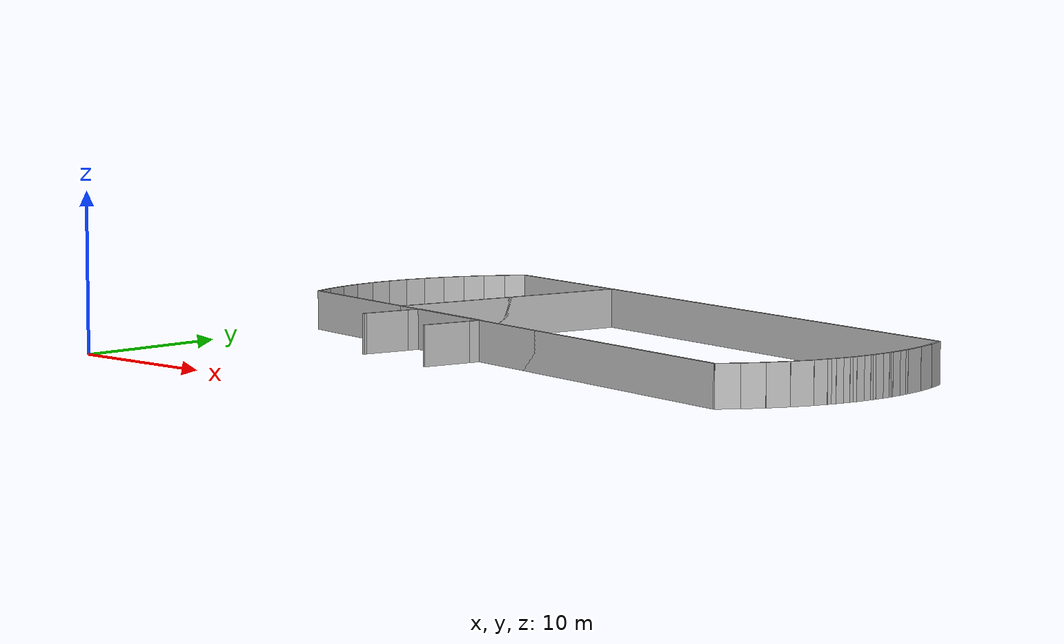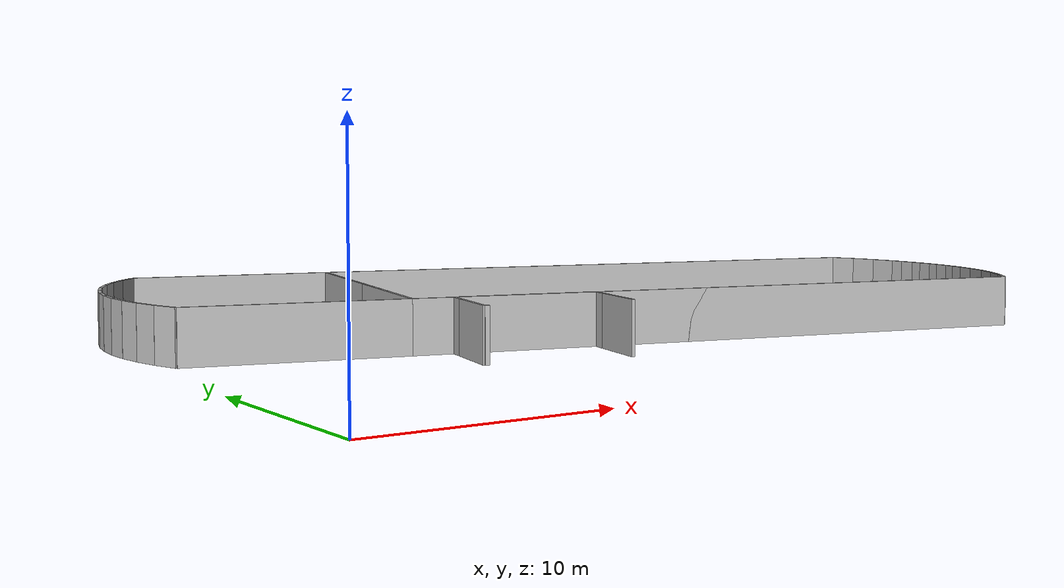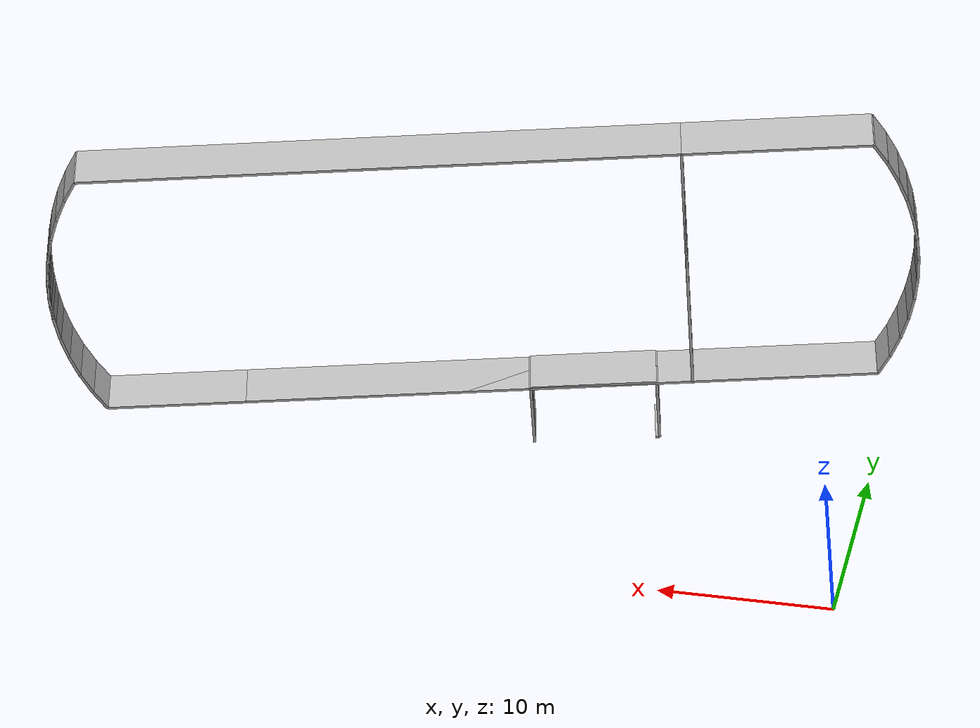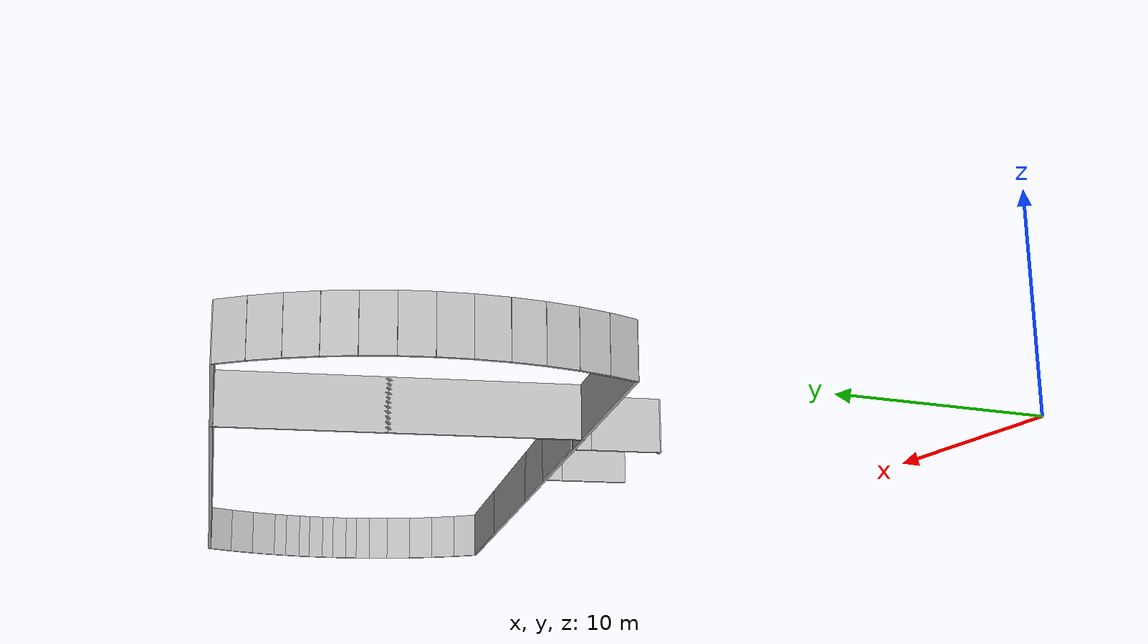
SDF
<?xml version="1.0" ?>
<sdf version="1.6">
  <model name="sps_1003">
    <pose frame="">0 0 0 0 -0 0</pose>
    <static>1</static>
    <self_collide>0</self_collide>
    <allow_auto_disable>0</allow_auto_disable>
    <link name="Wall126">
      <kinematic>0</kinematic>
      <gravity>1</gravity>
      <self_collide>0</self_collide>
      <collision name="collision">
        <geometry>
          <box>
            <size>3.17012 0.15 2.5</size>
          </box>
        </geometry>
        <pose frame="">0 0 0 0 -0 0</pose>
      </collision>
      <visual name="visual">
        <geometry>
          <box>
            <size>3.17012 0.15 2.5</size>
          </box>
        </geometry>
        <pose frame="">0 0 0 0 -0 0</pose>
        <cast_shadows>1</cast_shadows>
        <transparency>0.0</transparency>
      </visual>
      <pose frame="">18.9127 11.7757 1.25 0 -0 1.35649</pose>
    </link>
    <link name="Wall293">
      <kinematic>0</kinematic>
      <gravity>1</gravity>
      <self_collide>0</self_collide>
      <collision name="collision">
        <geometry>
          <box>
            <size>24.1434 0.15 2.5</size>
          </box>
        </geometry>
        <pose frame="">0 0 0 0 -0 0</pose>
      </collision>
      <visual name="visual">
        <geometry>
          <box>
            <size>24.1434 0.15 2.5</size>
          </box>
        </geometry>
        <pose frame="">0 0 0 0 -0 0</pose>
        <cast_shadows>1</cast_shadows>
        <transparency>0.0</transparency>
      </visual>
      <pose frame="">22.6738 13.3982 1.25 0 0 -0.214259</pose>
    </link>
    <link name="Wall294">
      <kinematic>0</kinematic>
      <gravity>1</gravity>
      <self_collide>0</self_collide>
      <collision name="collision">
        <geometry>
          <box>
            <size>7.51935 0.15 2.5</size>
          </box>
        </geometry>
        <pose frame="">0 0 0 0 -0 0</pose>
      </collision>
      <visual name="visual">
        <geometry>
          <box>
            <size>7.51935 0.15 2.5</size>
          </box>
        </geometry>
        <pose frame="">0 0 0 0 -0 0</pose>
        <cast_shadows>1</cast_shadows>
        <transparency>0.0</transparency>
      </visual>
      <pose frame="">38.1431 10.0321 1.25 0 0 -0.214259</pose>
    </link>
    <link name="Wall614">
      <kinematic>0</kinematic>
      <gravity>1</gravity>
      <self_collide>0</self_collide>
      <collision name="collision">
        <geometry>
          <box>
            <size>3.1699 0.15 2.5</size>
          </box>
        </geometry>
        <pose frame="">0 0 0 0 -0 0</pose>
      </collision>
      <visual name="visual">
        <geometry>
          <box>
            <size>3.1699 0.15 2.5</size>
          </box>
        </geometry>
        <pose frame="">0 0 0 0 -0 0</pose>
        <cast_shadows>1</cast_shadows>
        <transparency>0.0</transparency>
      </visual>
      <pose frame="">12.2673 13.2216 1.25 0 -0 1.35653</pose>
    </link>
    <link name="Wall769">
      <kinematic>0</kinematic>
      <gravity>1</gravity>
      <self_collide>0</self_collide>
      <collision name="collision">
        <geometry>
          <box>
            <size>16.1602 0.15 2.5</size>
          </box>
        </geometry>
        <pose frame="">0 0 0 0 -0 0</pose>
      </collision>
      <visual name="visual">
        <geometry>
          <box>
            <size>16.1602 0.15 2.5</size>
          </box>
        </geometry>
        <pose frame="">0 0 0 0 -0 0</pose>
        <cast_shadows>1</cast_shadows>
        <transparency>0.0</transparency>
      </visual>
      <pose frame="">12.5963 23.8602 1.25 0 -0 1.35651</pose>
    </link>
    <link name="Wall770">
      <kinematic>0</kinematic>
      <gravity>1</gravity>
      <self_collide>0</self_collide>
      <collision name="collision">
        <geometry>
          <box>
            <size>31.6619 0.15 2.5</size>
          </box>
        </geometry>
        <pose frame="">0 0 0 0 -0 0</pose>
      </collision>
      <visual name="visual">
        <geometry>
          <box>
            <size>31.6619 0.15 2.5</size>
          </box>
        </geometry>
        <pose frame="">0 0 0 0 -0 0</pose>
        <cast_shadows>1</cast_shadows>
        <transparency>0.0</transparency>
      </visual>
      <pose frame="">29.7835 28.3895 1.25 0 0 -0.214257</pose>
    </link>
    <link name="Wall771">
      <kinematic>0</kinematic>
      <gravity>1</gravity>
      <self_collide>0</self_collide>
      <collision name="collision">
        <geometry>
          <box>
            <size>1.41538 0.15 2.5</size>
          </box>
        </geometry>
        <pose frame="">0 0 0 0 -0 0</pose>
      </collision>
      <visual name="visual">
        <geometry>
          <box>
            <size>1.41538 0.15 2.5</size>
          </box>
        </geometry>
        <pose frame="">0 0 0 0 -0 0</pose>
        <cast_shadows>1</cast_shadows>
        <transparency>0.0</transparency>
      </visual>
      <pose frame="">45.4519 24.3445 1.25 0 0 -1.28516</pose>
    </link>
    <link name="Wall772">
      <kinematic>0</kinematic>
      <gravity>1</gravity>
      <self_collide>0</self_collide>
      <collision name="collision">
        <geometry>
          <box>
            <size>1.41535 0.15 2.5</size>
          </box>
        </geometry>
        <pose frame="">0 0 0 0 -0 0</pose>
      </collision>
      <visual name="visual">
        <geometry>
          <box>
            <size>1.41535 0.15 2.5</size>
          </box>
        </geometry>
        <pose frame="">0 0 0 0 -0 0</pose>
        <cast_shadows>1</cast_shadows>
        <transparency>0.0</transparency>
      </visual>
      <pose frame="">45.7882 22.9712 1.25 0 0 -1.37612</pose>
    </link>
    <link name="Wall773">
      <kinematic>0</kinematic>
      <gravity>1</gravity>
      <self_collide>0</self_collide>
      <collision name="collision">
        <geometry>
          <box>
            <size>1.41521 0.15 2.5</size>
          </box>
        </geometry>
        <pose frame="">0 0 0 0 -0 0</pose>
      </collision>
      <visual name="visual">
        <geometry>
          <box>
            <size>1.41521 0.15 2.5</size>
          </box>
        </geometry>
        <pose frame="">0 0 0 0 -0 0</pose>
        <cast_shadows>1</cast_shadows>
        <transparency>0.0</transparency>
      </visual>
      <pose frame="">45.9984 21.5731 1.25 0 0 -1.46702</pose>
    </link>
    <link name="Wall774">
      <kinematic>0</kinematic>
      <gravity>1</gravity>
      <self_collide>0</self_collide>
      <collision name="collision">
        <geometry>
          <box>
            <size>1.41552 0.15 2.5</size>
          </box>
        </geometry>
        <pose frame="">0 0 0 0 -0 0</pose>
      </collision>
      <visual name="visual">
        <geometry>
          <box>
            <size>1.41552 0.15 2.5</size>
          </box>
        </geometry>
        <pose frame="">0 0 0 0 -0 0</pose>
        <cast_shadows>1</cast_shadows>
        <transparency>0.0</transparency>
      </visual>
      <pose frame="">46.0809 20.1616 1.25 0 0 -1.55782</pose>
    </link>
    <link name="Wall775">
      <kinematic>0</kinematic>
      <gravity>1</gravity>
      <self_collide>0</self_collide>
      <collision name="collision">
        <geometry>
          <box>
            <size>1.41524 0.15 2.5</size>
          </box>
        </geometry>
        <pose frame="">0 0 0 0 -0 0</pose>
      </collision>
      <visual name="visual">
        <geometry>
          <box>
            <size>1.41524 0.15 2.5</size>
          </box>
        </geometry>
        <pose frame="">0 0 0 0 -0 0</pose>
        <cast_shadows>1</cast_shadows>
        <transparency>0.0</transparency>
      </visual>
      <pose frame="">46.035 18.7484 1.25 0 0 -1.64872</pose>
    </link>
    <link name="Wall776">
      <kinematic>0</kinematic>
      <gravity>1</gravity>
      <self_collide>0</self_collide>
      <collision name="collision">
        <geometry>
          <box>
            <size>1.41533 0.15 2.5</size>
          </box>
        </geometry>
        <pose frame="">0 0 0 0 -0 0</pose>
      </collision>
      <visual name="visual">
        <geometry>
          <box>
            <size>1.41533 0.15 2.5</size>
          </box>
        </geometry>
        <pose frame="">0 0 0 0 -0 0</pose>
        <cast_shadows>1</cast_shadows>
        <transparency>0.0</transparency>
      </visual>
      <pose frame="">45.861 17.3453 1.25 0 0 -1.73965</pose>
    </link>
    <link name="Wall777">
      <kinematic>0</kinematic>
      <gravity>1</gravity>
      <self_collide>0</self_collide>
      <collision name="collision">
        <geometry>
          <box>
            <size>1.41523 0.15 2.5</size>
          </box>
        </geometry>
        <pose frame="">0 0 0 0 -0 0</pose>
      </collision>
      <visual name="visual">
        <geometry>
          <box>
            <size>1.41523 0.15 2.5</size>
          </box>
        </geometry>
        <pose frame="">0 0 0 0 -0 0</pose>
        <cast_shadows>1</cast_shadows>
        <transparency>0.0</transparency>
      </visual>
      <pose frame="">45.5604 15.9638 1.25 0 0 -1.83044</pose>
    </link>
    <link name="Wall778">
      <kinematic>0</kinematic>
      <gravity>1</gravity>
      <self_collide>0</self_collide>
      <collision name="collision">
        <geometry>
          <box>
            <size>1.41529 0.15 2.5</size>
          </box>
        </geometry>
        <pose frame="">0 0 0 0 -0 0</pose>
      </collision>
      <visual name="visual">
        <geometry>
          <box>
            <size>1.41529 0.15 2.5</size>
          </box>
        </geometry>
        <pose frame="">0 0 0 0 -0 0</pose>
        <cast_shadows>1</cast_shadows>
        <transparency>0.0</transparency>
      </visual>
      <pose frame="">45.1357 14.6153 1.25 0 0 -1.92134</pose>
    </link>
    <link name="Wall779">
      <kinematic>0</kinematic>
      <gravity>1</gravity>
      <self_collide>0</self_collide>
      <collision name="collision">
        <geometry>
          <box>
            <size>1.41525 0.15 2.5</size>
          </box>
        </geometry>
        <pose frame="">0 0 0 0 -0 0</pose>
      </collision>
      <visual name="visual">
        <geometry>
          <box>
            <size>1.41525 0.15 2.5</size>
          </box>
        </geometry>
        <pose frame="">0 0 0 0 -0 0</pose>
        <cast_shadows>1</cast_shadows>
        <transparency>0.0</transparency>
      </visual>
      <pose frame="">44.5904 13.3109 1.25 0 0 -2.0122</pose>
    </link>
    <link name="Wall780">
      <kinematic>0</kinematic>
      <gravity>1</gravity>
      <self_collide>0</self_collide>
      <collision name="collision">
        <geometry>
          <box>
            <size>1.4153 0.15 2.5</size>
          </box>
        </geometry>
        <pose frame="">0 0 0 0 -0 0</pose>
      </collision>
      <visual name="visual">
        <geometry>
          <box>
            <size>1.4153 0.15 2.5</size>
          </box>
        </geometry>
        <pose frame="">0 0 0 0 -0 0</pose>
        <cast_shadows>1</cast_shadows>
        <transparency>0.0</transparency>
      </visual>
      <pose frame="">43.9289 12.0614 1.25 0 0 -2.10318</pose>
    </link>
    <link name="Wall781">
      <kinematic>0</kinematic>
      <gravity>1</gravity>
      <self_collide>0</self_collide>
      <collision name="collision">
        <geometry>
          <box>
            <size>1.41537 0.15 2.5</size>
          </box>
        </geometry>
        <pose frame="">0 0 0 0 -0 0</pose>
      </collision>
      <visual name="visual">
        <geometry>
          <box>
            <size>1.41537 0.15 2.5</size>
          </box>
        </geometry>
        <pose frame="">0 0 0 0 -0 0</pose>
        <cast_shadows>1</cast_shadows>
        <transparency>0.0</transparency>
      </visual>
      <pose frame="">43.1567 10.877 1.25 0 0 -2.19393</pose>
    </link>
    <link name="Wall782">
      <kinematic>0</kinematic>
      <gravity>1</gravity>
      <self_collide>0</self_collide>
      <collision name="collision">
        <geometry>
          <box>
            <size>1.41532 0.15 2.5</size>
          </box>
        </geometry>
        <pose frame="">0 0 0 0 -0 0</pose>
      </collision>
      <visual name="visual">
        <geometry>
          <box>
            <size>1.41532 0.15 2.5</size>
          </box>
        </geometry>
        <pose frame="">0 0 0 0 -0 0</pose>
        <cast_shadows>1</cast_shadows>
        <transparency>0.0</transparency>
      </visual>
      <pose frame="">42.2803 9.7675 1.25 0 0 -2.28478</pose>
    </link>
    <link name="Wall783">
      <kinematic>0</kinematic>
      <gravity>1</gravity>
      <self_collide>0</self_collide>
      <collision name="collision">
        <geometry>
          <box>
            <size>31.6628 0.15 2.5</size>
          </box>
        </geometry>
        <pose frame="">0 0 0 0 -0 0</pose>
      </collision>
      <visual name="visual">
        <geometry>
          <box>
            <size>31.6628 0.15 2.5</size>
          </box>
        </geometry>
        <pose frame="">0 0 0 0 -0 0</pose>
        <cast_shadows>1</cast_shadows>
        <transparency>0.0</transparency>
      </visual>
      <pose frame="">26.3475 12.5988 1.25 0 -0 2.92733</pose>
    </link>
    <link name="Wall863">
      <kinematic>0</kinematic>
      <gravity>1</gravity>
      <self_collide>0</self_collide>
      <collision name="collision">
        <geometry>
          <box>
            <size>0.220409 0.15 2.5</size>
          </box>
        </geometry>
        <pose frame="">0 0 0 0 -0 0</pose>
      </collision>
      <visual name="visual">
        <geometry>
          <box>
            <size>0.220409 0.15 2.5</size>
          </box>
        </geometry>
        <pose frame="">0 0 0 0 -0 0</pose>
        <cast_shadows>1</cast_shadows>
        <transparency>0.0</transparency>
      </visual>
      <pose frame="">12.038 11.6495 1.25 0 -0 2.92785</pose>
    </link>
    <link name="Wall864">
      <kinematic>0</kinematic>
      <gravity>1</gravity>
      <self_collide>0</self_collide>
      <collision name="collision">
        <geometry>
          <box>
            <size>3.1699 0.15 2.5</size>
          </box>
        </geometry>
        <pose frame="">0 0 0 0 -0 0</pose>
      </collision>
      <visual name="visual">
        <geometry>
          <box>
            <size>3.1699 0.15 2.5</size>
          </box>
        </geometry>
        <pose frame="">0 0 0 0 -0 0</pose>
        <cast_shadows>1</cast_shadows>
        <transparency>0.0</transparency>
      </visual>
      <pose frame="">12.2673 13.2216 1.25 0 -0 1.35653</pose>
    </link>
    <link name="Wall865">
      <kinematic>0</kinematic>
      <gravity>1</gravity>
      <self_collide>0</self_collide>
      <collision name="collision">
        <geometry>
          <box>
            <size>0.880123 0.15 2.5</size>
          </box>
        </geometry>
        <pose frame="">0 0 0 0 -0 0</pose>
      </collision>
      <visual name="visual">
        <geometry>
          <box>
            <size>0.880123 0.15 2.5</size>
          </box>
        </geometry>
        <pose frame="">0 0 0 0 -0 0</pose>
        <cast_shadows>1</cast_shadows>
        <transparency>0.0</transparency>
      </visual>
      <pose frame="">12.6979 15.2003 1.25 0 -0 1.35647</pose>
    </link>
    <link name="Wall866">
      <kinematic>0</kinematic>
      <gravity>1</gravity>
      <self_collide>0</self_collide>
      <collision name="collision">
        <geometry>
          <box>
            <size>6.80007 0.15 2.5</size>
          </box>
        </geometry>
        <pose frame="">0 0 0 0 -0 0</pose>
      </collision>
      <visual name="visual">
        <geometry>
          <box>
            <size>6.80007 0.15 2.5</size>
          </box>
        </geometry>
        <pose frame="">0 0 0 0 -0 0</pose>
        <cast_shadows>1</cast_shadows>
        <transparency>0.0</transparency>
      </visual>
      <pose frame="">16.1138 14.9074 1.25 0 0 -0.214251</pose>
    </link>
    <link name="Wall867">
      <kinematic>0</kinematic>
      <gravity>1</gravity>
      <self_collide>0</self_collide>
      <collision name="collision">
        <geometry>
          <box>
            <size>0.879755 0.15 2.5</size>
          </box>
        </geometry>
        <pose frame="">0 0 0 0 -0 0</pose>
      </collision>
      <visual name="visual">
        <geometry>
          <box>
            <size>0.879755 0.15 2.5</size>
          </box>
        </geometry>
        <pose frame="">0 0 0 0 -0 0</pose>
        <cast_shadows>1</cast_shadows>
        <transparency>0.0</transparency>
      </visual>
      <pose frame="">19.3428 13.7546 1.25 0 0 -1.78451</pose>
    </link>
    <link name="Wall1420">
      <kinematic>0</kinematic>
      <gravity>1</gravity>
      <self_collide>0</self_collide>
      <collision name="collision">
        <geometry>
          <box>
            <size>9.98002 0.15 2.5</size>
          </box>
        </geometry>
        <pose frame="">0 0 0 0 -0 0</pose>
      </collision>
      <visual name="visual">
        <geometry>
          <box>
            <size>9.98002 0.15 2.5</size>
          </box>
        </geometry>
        <pose frame="">0 0 0 0 -0 0</pose>
        <cast_shadows>1</cast_shadows>
        <transparency>0.0</transparency>
      </visual>
      <pose frame="">6.00216 17.0259 1.25 0 -0 2.92734</pose>
    </link>
    <link name="Wall1421">
      <kinematic>0</kinematic>
      <gravity>1</gravity>
      <self_collide>0</self_collide>
      <collision name="collision">
        <geometry>
          <box>
            <size>1.41538 0.15 2.5</size>
          </box>
        </geometry>
        <pose frame="">0 0 0 0 -0 0</pose>
      </collision>
      <visual name="visual">
        <geometry>
          <box>
            <size>1.41538 0.15 2.5</size>
          </box>
        </geometry>
        <pose frame="">0 0 0 0 -0 0</pose>
        <cast_shadows>1</cast_shadows>
        <transparency>0.0</transparency>
      </visual>
      <pose frame="">0.926841 18.7659 1.25 0 -0 1.85643</pose>
    </link>
    <link name="Wall1422">
      <kinematic>0</kinematic>
      <gravity>1</gravity>
      <self_collide>0</self_collide>
      <collision name="collision">
        <geometry>
          <box>
            <size>1.41511 0.15 2.5</size>
          </box>
        </geometry>
        <pose frame="">0 0 0 0 -0 0</pose>
      </collision>
      <visual name="visual">
        <geometry>
          <box>
            <size>1.41511 0.15 2.5</size>
          </box>
        </geometry>
        <pose frame="">0 0 0 0 -0 0</pose>
        <cast_shadows>1</cast_shadows>
        <transparency>0.0</transparency>
      </visual>
      <pose frame="">0.590537 20.1391 1.25 0 -0 1.76551</pose>
    </link>
    <link name="Wall1423">
      <kinematic>0</kinematic>
      <gravity>1</gravity>
      <self_collide>0</self_collide>
      <collision name="collision">
        <geometry>
          <box>
            <size>1.41545 0.15 2.5</size>
          </box>
        </geometry>
        <pose frame="">0 0 0 0 -0 0</pose>
      </collision>
      <visual name="visual">
        <geometry>
          <box>
            <size>1.41545 0.15 2.5</size>
          </box>
        </geometry>
        <pose frame="">0 0 0 0 -0 0</pose>
        <cast_shadows>1</cast_shadows>
        <transparency>0.0</transparency>
      </visual>
      <pose frame="">0.380332 21.5372 1.25 0 -0 1.67456</pose>
    </link>
    <link name="Wall1424">
      <kinematic>0</kinematic>
      <gravity>1</gravity>
      <self_collide>0</self_collide>
      <collision name="collision">
        <geometry>
          <box>
            <size>1.41528 0.15 2.5</size>
          </box>
        </geometry>
        <pose frame="">0 0 0 0 -0 0</pose>
      </collision>
      <visual name="visual">
        <geometry>
          <box>
            <size>1.41528 0.15 2.5</size>
          </box>
        </geometry>
        <pose frame="">0 0 0 0 -0 0</pose>
        <cast_shadows>1</cast_shadows>
        <transparency>0.0</transparency>
      </visual>
      <pose frame="">0.297935 22.9487 1.25 0 -0 1.58365</pose>
    </link>
    <link name="Wall1425">
      <kinematic>0</kinematic>
      <gravity>1</gravity>
      <self_collide>0</self_collide>
      <collision name="collision">
        <geometry>
          <box>
            <size>1.41531 0.15 2.5</size>
          </box>
        </geometry>
        <pose frame="">0 0 0 0 -0 0</pose>
      </collision>
      <visual name="visual">
        <geometry>
          <box>
            <size>1.41531 0.15 2.5</size>
          </box>
        </geometry>
        <pose frame="">0 0 0 0 -0 0</pose>
        <cast_shadows>1</cast_shadows>
        <transparency>0.0</transparency>
      </visual>
      <pose frame="">0.343955 24.3618 1.25 0 -0 1.49283</pose>
    </link>
    <link name="Wall1426">
      <kinematic>0</kinematic>
      <gravity>1</gravity>
      <self_collide>0</self_collide>
      <collision name="collision">
        <geometry>
          <box>
            <size>1.41532 0.15 2.5</size>
          </box>
        </geometry>
        <pose frame="">0 0 0 0 -0 0</pose>
      </collision>
      <visual name="visual">
        <geometry>
          <box>
            <size>1.41532 0.15 2.5</size>
          </box>
        </geometry>
        <pose frame="">0 0 0 0 -0 0</pose>
        <cast_shadows>1</cast_shadows>
        <transparency>0.0</transparency>
      </visual>
      <pose frame="">0.517967 25.7649 1.25 0 -0 1.40198</pose>
    </link>
    <link name="Wall1427">
      <kinematic>0</kinematic>
      <gravity>1</gravity>
      <self_collide>0</self_collide>
      <collision name="collision">
        <geometry>
          <box>
            <size>1.41525 0.15 2.5</size>
          </box>
        </geometry>
        <pose frame="">0 0 0 0 -0 0</pose>
      </collision>
      <visual name="visual">
        <geometry>
          <box>
            <size>1.41525 0.15 2.5</size>
          </box>
        </geometry>
        <pose frame="">0 0 0 0 -0 0</pose>
        <cast_shadows>1</cast_shadows>
        <transparency>0.0</transparency>
      </visual>
      <pose frame="">0.818565 27.1464 1.25 0 -0 1.31111</pose>
    </link>
    <link name="Wall1428">
      <kinematic>0</kinematic>
      <gravity>1</gravity>
      <self_collide>0</self_collide>
      <collision name="collision">
        <geometry>
          <box>
            <size>1.41527 0.15 2.5</size>
          </box>
        </geometry>
        <pose frame="">0 0 0 0 -0 0</pose>
      </collision>
      <visual name="visual">
        <geometry>
          <box>
            <size>1.41527 0.15 2.5</size>
          </box>
        </geometry>
        <pose frame="">0 0 0 0 -0 0</pose>
        <cast_shadows>1</cast_shadows>
        <transparency>0.0</transparency>
      </visual>
      <pose frame="">1.24325 28.4949 1.25 0 -0 1.22029</pose>
    </link>
    <link name="Wall1429">
      <kinematic>0</kinematic>
      <gravity>1</gravity>
      <self_collide>0</self_collide>
      <collision name="collision">
        <geometry>
          <box>
            <size>1.41525 0.15 2.5</size>
          </box>
        </geometry>
        <pose frame="">0 0 0 0 -0 0</pose>
      </collision>
      <visual name="visual">
        <geometry>
          <box>
            <size>1.41525 0.15 2.5</size>
          </box>
        </geometry>
        <pose frame="">0 0 0 0 -0 0</pose>
        <cast_shadows>1</cast_shadows>
        <transparency>0.0</transparency>
      </visual>
      <pose frame="">1.78854 29.7993 1.25 0 -0 1.12939</pose>
    </link>
    <link name="Wall1430">
      <kinematic>0</kinematic>
      <gravity>1</gravity>
      <self_collide>0</self_collide>
      <collision name="collision">
        <geometry>
          <box>
            <size>1.4153 0.15 2.5</size>
          </box>
        </geometry>
        <pose frame="">0 0 0 0 -0 0</pose>
      </collision>
      <visual name="visual">
        <geometry>
          <box>
            <size>1.4153 0.15 2.5</size>
          </box>
        </geometry>
        <pose frame="">0 0 0 0 -0 0</pose>
        <cast_shadows>1</cast_shadows>
        <transparency>0.0</transparency>
      </visual>
      <pose frame="">2.45003 31.0488 1.25 0 -0 1.03842</pose>
    </link>
    <link name="Wall1431">
      <kinematic>0</kinematic>
      <gravity>1</gravity>
      <self_collide>0</self_collide>
      <collision name="collision">
        <geometry>
          <box>
            <size>1.4154 0.15 2.5</size>
          </box>
        </geometry>
        <pose frame="">0 0 0 0 -0 0</pose>
      </collision>
      <visual name="visual">
        <geometry>
          <box>
            <size>1.4154 0.15 2.5</size>
          </box>
        </geometry>
        <pose frame="">0 0 0 0 -0 0</pose>
        <cast_shadows>1</cast_shadows>
        <transparency>0.0</transparency>
      </visual>
      <pose frame="">3.22225 32.2332 1.25 0 -0 0.947624</pose>
    </link>
    <link name="Wall1432">
      <kinematic>0</kinematic>
      <gravity>1</gravity>
      <self_collide>0</self_collide>
      <collision name="collision">
        <geometry>
          <box>
            <size>1.41509 0.15 2.5</size>
          </box>
        </geometry>
        <pose frame="">0 0 0 0 -0 0</pose>
      </collision>
      <visual name="visual">
        <geometry>
          <box>
            <size>1.41509 0.15 2.5</size>
          </box>
        </geometry>
        <pose frame="">0 0 0 0 -0 0</pose>
        <cast_shadows>1</cast_shadows>
        <transparency>0.0</transparency>
      </visual>
      <pose frame="">4.09866 33.3426 1.25 0 -0 0.856734</pose>
    </link>
    <link name="Wall1433">
      <kinematic>0</kinematic>
      <gravity>1</gravity>
      <self_collide>0</self_collide>
      <collision name="collision">
        <geometry>
          <box>
            <size>9.98058 0.15 2.5</size>
          </box>
        </geometry>
        <pose frame="">0 0 0 0 -0 0</pose>
      </collision>
      <visual name="visual">
        <geometry>
          <box>
            <size>9.98058 0.15 2.5</size>
          </box>
        </geometry>
        <pose frame="">0 0 0 0 -0 0</pose>
        <cast_shadows>1</cast_shadows>
        <transparency>0.0</transparency>
      </visual>
      <pose frame="">9.43825 32.8164 1.25 0 0 -0.214224</pose>
    </link>
    <link name="Wall1434">
      <kinematic>0</kinematic>
      <gravity>1</gravity>
      <self_collide>0</self_collide>
      <collision name="collision">
        <geometry>
          <box>
            <size>16.1602 0.15 2.5</size>
          </box>
        </geometry>
        <pose frame="">0 0 0 0 -0 0</pose>
      </collision>
      <visual name="visual">
        <geometry>
          <box>
            <size>16.1602 0.15 2.5</size>
          </box>
        </geometry>
        <pose frame="">0 0 0 0 -0 0</pose>
        <cast_shadows>1</cast_shadows>
        <transparency>0.0</transparency>
      </visual>
      <pose frame="">12.5963 23.8602 1.25 0 0 -1.78508</pose>
    </link>
    <link name="Wall1579">
      <kinematic>0</kinematic>
      <gravity>1</gravity>
      <self_collide>0</self_collide>
      <collision name="collision">
        <geometry>
          <box>
            <size>1.50199 0.15 2.5</size>
          </box>
        </geometry>
        <pose frame="">0 0 0 0 -0 0</pose>
      </collision>
      <visual name="visual">
        <geometry>
          <box>
            <size>1.50199 0.15 2.5</size>
          </box>
        </geometry>
        <pose frame="">0 0 0 0 -0 0</pose>
        <cast_shadows>1</cast_shadows>
        <transparency>0.0</transparency>
      </visual>
      <pose frame="">45.4148 15.4588 1.25 0 -0 1.2774</pose>
    </link>
    <link name="Wall1580">
      <kinematic>0</kinematic>
      <gravity>1</gravity>
      <self_collide>0</self_collide>
      <collision name="collision">
        <geometry>
          <box>
            <size>1.50187 0.15 2.5</size>
          </box>
        </geometry>
        <pose frame="">0 0 0 0 -0 0</pose>
      </collision>
      <visual name="visual">
        <geometry>
          <box>
            <size>1.50187 0.15 2.5</size>
          </box>
        </geometry>
        <pose frame="">0 0 0 0 -0 0</pose>
        <cast_shadows>1</cast_shadows>
        <transparency>0.0</transparency>
      </visual>
      <pose frame="">45.7791 16.9141 1.25 0 -0 1.37364</pose>
    </link>
    <link name="Wall1581">
      <kinematic>0</kinematic>
      <gravity>1</gravity>
      <self_collide>0</self_collide>
      <collision name="collision">
        <geometry>
          <box>
            <size>1.50204 0.15 2.5</size>
          </box>
        </geometry>
        <pose frame="">0 0 0 0 -0 0</pose>
      </collision>
      <visual name="visual">
        <geometry>
          <box>
            <size>1.50204 0.15 2.5</size>
          </box>
        </geometry>
        <pose frame="">0 0 0 0 -0 0</pose>
        <cast_shadows>1</cast_shadows>
        <transparency>0.0</transparency>
      </visual>
      <pose frame="">46.0016 18.3977 1.25 0 -0 1.47022</pose>
    </link>
    <link name="Wall1582">
      <kinematic>0</kinematic>
      <gravity>1</gravity>
      <self_collide>0</self_collide>
      <collision name="collision">
        <geometry>
          <box>
            <size>1.50178 0.15 2.5</size>
          </box>
        </geometry>
        <pose frame="">0 0 0 0 -0 0</pose>
      </collision>
      <visual name="visual">
        <geometry>
          <box>
            <size>1.50178 0.15 2.5</size>
          </box>
        </geometry>
        <pose frame="">0 0 0 0 -0 0</pose>
        <cast_shadows>1</cast_shadows>
        <transparency>0.0</transparency>
      </visual>
      <pose frame="">46.0802 19.8958 1.25 0 -0 1.56665</pose>
    </link>
  </model>
</sdf>
